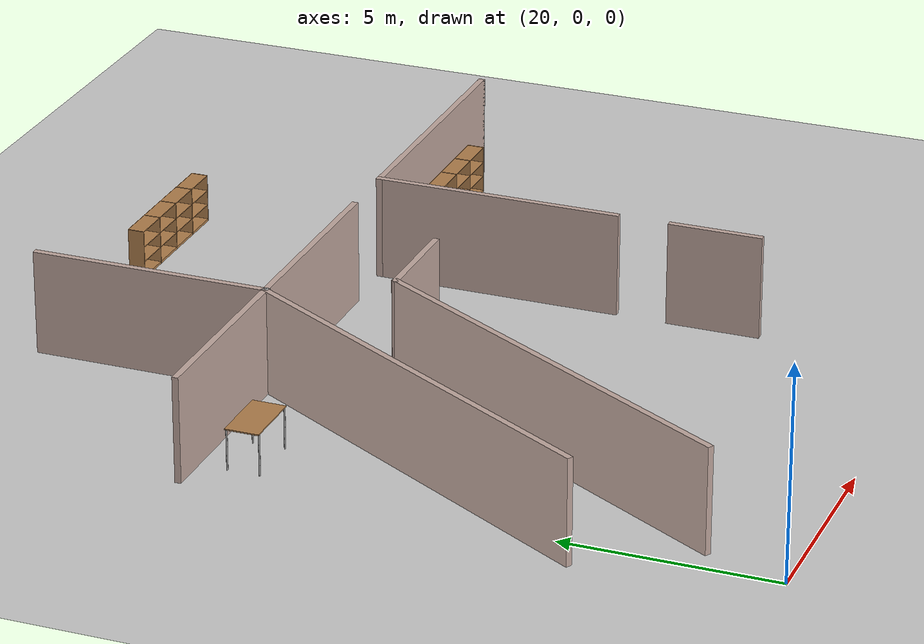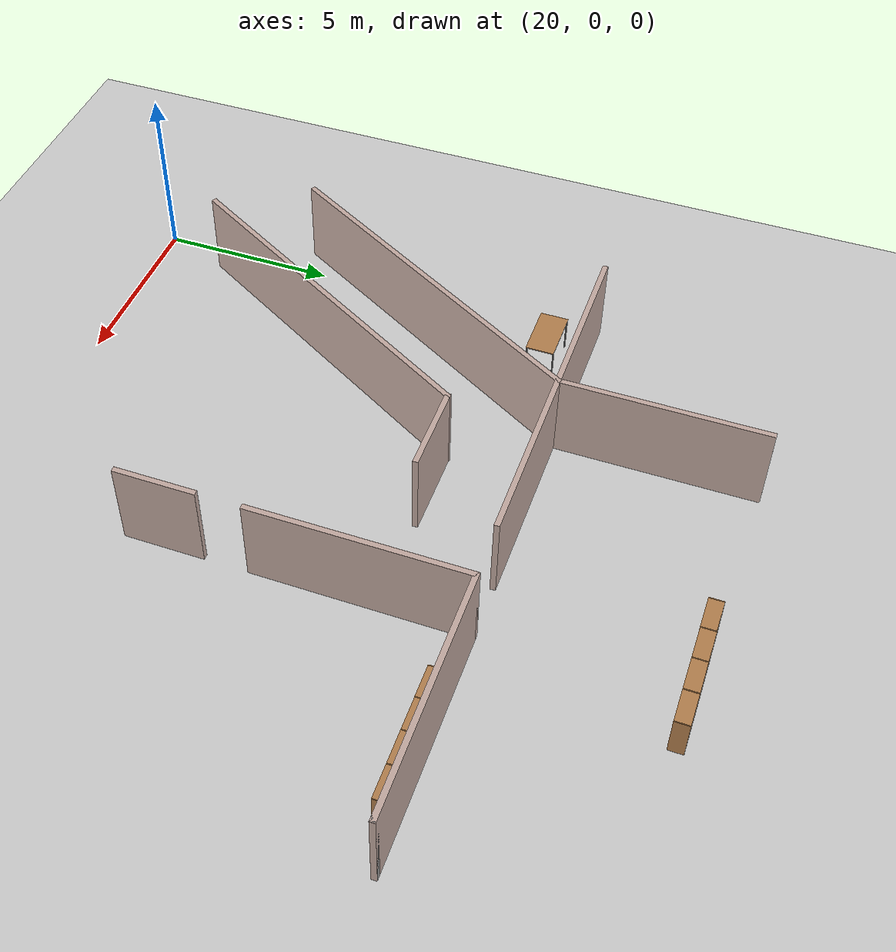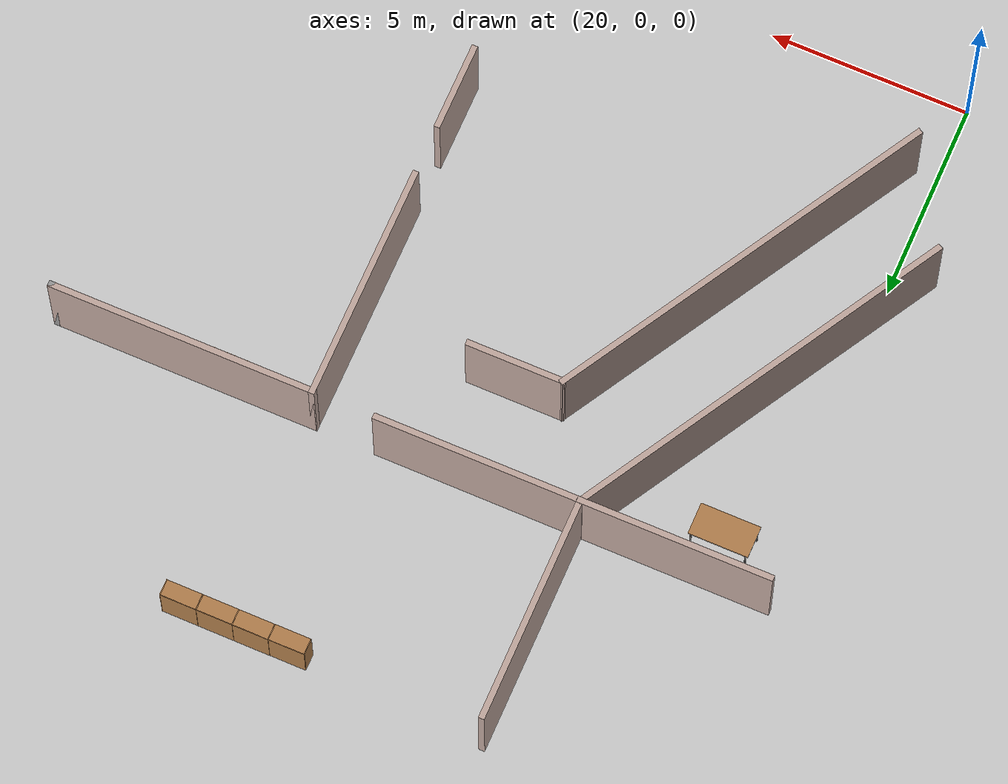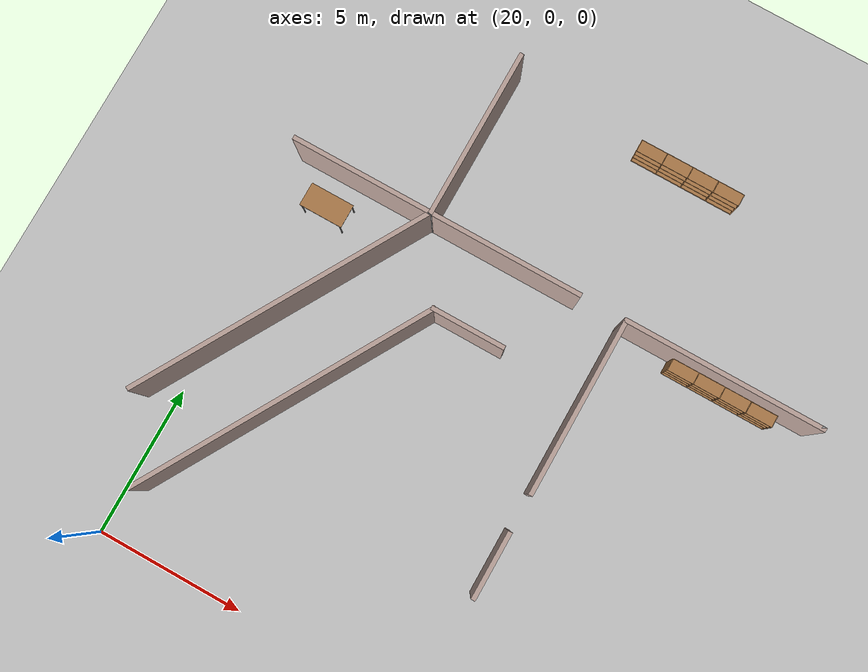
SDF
<sdf version="1.6">
 <world name="default">
  <model name="ground_plane">
   <static>1</static>
   <link name="link">
    <collision name="collision">
     <geometry><plane><normal>0 0 1</normal><size>100 100</size></plane></geometry>
     <surface><friction><ode><mu>100</mu><mu2>50</mu2></ode></friction></surface>
    </collision>
    <visual name="visual">
     <cast_shadows>0</cast_shadows>
     <geometry><plane><normal>0 0 1</normal><size>100 100</size></plane></geometry>
     <material>
      <script><uri>file://media/materials/scripts/gazebo.material</uri><name>Gazebo/Grey</name></script>
     </material>
    </visual>
   </link>
  </model>
  <model name="floor">
   <link name="Wall_151">
    <pose>20.4424 10.1846 0 0 -0 1.0472</pose>
    <visual name="Wall_151_Visual">
     <pose>0 0 1.25 0 -0 0</pose>
     <geometry><box><size>10.5 0.15 2.5</size></box></geometry>
     <material>
      <script><uri>file://media/materials/scripts/gazebo.material</uri><name>Gazebo/Grey</name></script>
      <ambient>0.760784 0.662745 0.627451 1</ambient>
     </material>
     <meta><layer>0</layer></meta>
    </visual>
    <collision name="Wall_151_Collision">
     <pose>0 0 1.25 0 -0 0</pose>
     <geometry><box><size>10.5 0.15 2.5</size></box></geometry>
     <surface>
      <friction>
       <ode><mu>1</mu><mu2>1</mu2><fdir1>0 0 0</fdir1><slip1>0</slip1><slip2>0</slip2></ode>
       <torsional>
        <coefficient>1</coefficient>
        <patch_radius>0</patch_radius>
        <surface_radius>0</surface_radius>
        <use_patch_radius>1</use_patch_radius>
        <ode><slip>0</slip></ode>
       </torsional>
      </friction>
      <bounce><restitution_coefficient>0</restitution_coefficient><threshold>1e+06</threshold></bounce>
      <contact>
       <collide_without_contact>0</collide_without_contact>
       <collide_without_contact_bitmask>1</collide_without_contact_bitmask>
       <collide_bitmask>1</collide_bitmask>
       <ode>
        <soft_cfm>0</soft_cfm>
        <soft_erp>0.2</soft_erp>
        <kp>1e+13</kp>
        <kd>1</kd>
        <max_vel>0.01</max_vel>
        <min_depth>0</min_depth>
       </ode>
       <bullet>
        <split_impulse>1</split_impulse>
        <split_impulse_penetration_threshold>-0.01</split_impulse_penetration_threshold>
        <soft_cfm>0</soft_cfm>
        <soft_erp>0.2</soft_erp>
        <kp>1e+13</kp>
        <kd>1</kd>
       </bullet>
      </contact>
     </surface>
    </collision>
   </link>
   <link name="Wall_152">
    <pose>25.5799 14.6662 0 0 -0 0</pose>
    <visual name="Wall_152_Visual">
     <pose>0 0 1.25 0 -0 0</pose>
     <geometry><box><size>5.25 0.15 2.5</size></box></geometry>
     <material>
      <script><uri>file://media/materials/scripts/gazebo.material</uri><name>Gazebo/Grey</name></script>
      <ambient>0.760784 0.662745 0.627451 1</ambient>
     </material>
     <meta><layer>0</layer></meta>
    </visual>
    <collision name="Wall_152_Collision">
     <pose>0 0 1.25 0 -0 0</pose>
     <geometry><box><size>5.25 0.15 2.5</size></box></geometry>
     <surface>
      <friction>
       <ode><mu>1</mu><mu2>1</mu2><fdir1>0 0 0</fdir1><slip1>0</slip1><slip2>0</slip2></ode>
       <torsional>
        <coefficient>1</coefficient>
        <patch_radius>0</patch_radius>
        <surface_radius>0</surface_radius>
        <use_patch_radius>1</use_patch_radius>
        <ode><slip>0</slip></ode>
       </torsional>
      </friction>
      <bounce><restitution_coefficient>0</restitution_coefficient><threshold>1e+06</threshold></bounce>
      <contact>
       <collide_without_contact>0</collide_without_contact>
       <collide_without_contact_bitmask>1</collide_without_contact_bitmask>
       <collide_bitmask>1</collide_bitmask>
       <ode>
        <soft_cfm>0</soft_cfm>
        <soft_erp>0.2</soft_erp>
        <kp>1e+13</kp>
        <kd>1</kd>
        <max_vel>0.01</max_vel>
        <min_depth>0</min_depth>
       </ode>
       <bullet>
        <split_impulse>1</split_impulse>
        <split_impulse_penetration_threshold>-0.01</split_impulse_penetration_threshold>
        <soft_cfm>0</soft_cfm>
        <soft_erp>0.2</soft_erp>
        <kp>1e+13</kp>
        <kd>1</kd>
       </bullet>
      </contact>
     </surface>
    </collision>
   </link>
   <link name="Wall_154">
    <pose>33.0299 14.6662 0 0 -0 0</pose>
    <visual name="Wall_154_Visual">
     <pose>0 0 1.25 0 -0 0</pose>
     <geometry><box><size>6.75 0.15 2.5</size></box></geometry>
     <material>
      <script><uri>file://media/materials/scripts/gazebo.material</uri><name>Gazebo/Grey</name></script>
      <ambient>0.760784 0.662745 0.627451 1</ambient>
     </material>
     <meta><layer>0</layer></meta>
    </visual>
    <collision name="Wall_154_Collision">
     <pose>0 0 1.25 0 -0 0</pose>
     <geometry><box><size>6.75 0.15 2.5</size></box></geometry>
     <surface>
      <friction>
       <ode><mu>1</mu><mu2>1</mu2><fdir1>0 0 0</fdir1><slip1>0</slip1><slip2>0</slip2></ode>
       <torsional>
        <coefficient>1</coefficient>
        <patch_radius>0</patch_radius>
        <surface_radius>0</surface_radius>
        <use_patch_radius>1</use_patch_radius>
        <ode><slip>0</slip></ode>
       </torsional>
      </friction>
      <bounce><restitution_coefficient>0</restitution_coefficient><threshold>1e+06</threshold></bounce>
      <contact>
       <collide_without_contact>0</collide_without_contact>
       <collide_without_contact_bitmask>1</collide_without_contact_bitmask>
       <collide_bitmask>1</collide_bitmask>
       <ode>
        <soft_cfm>0</soft_cfm>
        <soft_erp>0.2</soft_erp>
        <kp>1e+13</kp>
        <kd>1</kd>
        <max_vel>0.01</max_vel>
        <min_depth>0</min_depth>
       </ode>
       <bullet>
        <split_impulse>1</split_impulse>
        <split_impulse_penetration_threshold>-0.01</split_impulse_penetration_threshold>
        <soft_cfm>0</soft_cfm>
        <soft_erp>0.2</soft_erp>
        <kp>1e+13</kp>
        <kd>1</kd>
       </bullet>
      </contact>
     </surface>
    </collision>
   </link>
   <link name="Wall_155">
    <pose>36.3299 14.6662 0 0 -0 0</pose>
    <visual name="Wall_155_Visual">
     <pose>0 0 1.25 0 -0 0</pose>
     <geometry><box><size>0.15 0.15 2.5</size></box></geometry>
     <material>
      <script><uri>file://media/materials/scripts/gazebo.material</uri><name>Gazebo/Grey</name></script>
      <ambient>1 1 1 1</ambient>
     </material>
     <meta><layer>0</layer></meta>
    </visual>
    <collision name="Wall_155_Collision">
     <pose>0 0 1.25 0 -0 0</pose>
     <geometry><box><size>0.15 0.15 2.5</size></box></geometry>
     <surface>
      <friction>
       <ode><mu>1</mu><mu2>1</mu2><fdir1>0 0 0</fdir1><slip1>0</slip1><slip2>0</slip2></ode>
       <torsional>
        <coefficient>1</coefficient>
        <patch_radius>0</patch_radius>
        <surface_radius>0</surface_radius>
        <use_patch_radius>1</use_patch_radius>
        <ode><slip>0</slip></ode>
       </torsional>
      </friction>
      <bounce><restitution_coefficient>0</restitution_coefficient><threshold>1e+06</threshold></bounce>
      <contact>
       <collide_without_contact>0</collide_without_contact>
       <collide_without_contact_bitmask>1</collide_without_contact_bitmask>
       <collide_bitmask>1</collide_bitmask>
       <ode>
        <soft_cfm>0</soft_cfm>
        <soft_erp>0.2</soft_erp>
        <kp>1e+13</kp>
        <kd>1</kd>
        <max_vel>0.01</max_vel>
        <min_depth>0</min_depth>
       </ode>
       <bullet>
        <split_impulse>1</split_impulse>
        <split_impulse_penetration_threshold>-0.01</split_impulse_penetration_threshold>
        <soft_cfm>0</soft_cfm>
        <soft_erp>0.2</soft_erp>
        <kp>1e+13</kp>
        <kd>1</kd>
       </bullet>
      </contact>
     </surface>
    </collision>
   </link>
   <link name="Wall_158">
    <pose>23.0349 14.6662 0 0 -0 0</pose>
    <visual name="Wall_158_Visual">
     <pose>0 0 1.25 0 -0 0</pose>
     <geometry><box><size>0.16 0.15 2.5</size></box></geometry>
     <material>
      <script><uri>file://media/materials/scripts/gazebo.material</uri><name>Gazebo/Grey</name></script>
      <ambient>1 1 1 1</ambient>
     </material>
     <meta><layer>0</layer></meta>
    </visual>
    <collision name="Wall_158_Collision">
     <pose>0 0 1.25 0 -0 0</pose>
     <geometry><box><size>0.16 0.15 2.5</size></box></geometry>
     <surface>
      <friction>
       <ode><mu>1</mu><mu2>1</mu2><fdir1>0 0 0</fdir1><slip1>0</slip1><slip2>0</slip2></ode>
       <torsional>
        <coefficient>1</coefficient>
        <patch_radius>0</patch_radius>
        <surface_radius>0</surface_radius>
        <use_patch_radius>1</use_patch_radius>
        <ode><slip>0</slip></ode>
       </torsional>
      </friction>
      <bounce><restitution_coefficient>0</restitution_coefficient><threshold>1e+06</threshold></bounce>
      <contact>
       <collide_without_contact>0</collide_without_contact>
       <collide_without_contact_bitmask>1</collide_without_contact_bitmask>
       <collide_bitmask>1</collide_bitmask>
       <ode>
        <soft_cfm>0</soft_cfm>
        <soft_erp>0.2</soft_erp>
        <kp>1e+13</kp>
        <kd>1</kd>
        <max_vel>0.01</max_vel>
        <min_depth>0</min_depth>
       </ode>
       <bullet>
        <split_impulse>1</split_impulse>
        <split_impulse_penetration_threshold>-0.01</split_impulse_penetration_threshold>
        <soft_cfm>0</soft_cfm>
        <soft_erp>0.2</soft_erp>
        <kp>1e+13</kp>
        <kd>1</kd>
       </bullet>
      </contact>
     </surface>
    </collision>
   </link>
   <link name="Wall_159">
    <pose>23.0399 17.4662 0 0 -0 1.5708</pose>
    <visual name="Wall_159_Visual">
     <pose>0 0 1.25 0 -0 0</pose>
     <geometry><box><size>5.75 0.15 2.5</size></box></geometry>
     <material>
      <script><uri>file://media/materials/scripts/gazebo.material</uri><name>Gazebo/Grey</name></script>
      <ambient>0.760784 0.662745 0.627451 1</ambient>
     </material>
     <meta><layer>0</layer></meta>
    </visual>
    <collision name="Wall_159_Collision">
     <pose>0 0 1.25 0 -0 0</pose>
     <geometry><box><size>5.75 0.15 2.5</size></box></geometry>
     <surface>
      <friction>
       <ode><mu>1</mu><mu2>1</mu2><fdir1>0 0 0</fdir1><slip1>0</slip1><slip2>0</slip2></ode>
       <torsional>
        <coefficient>1</coefficient>
        <patch_radius>0</patch_radius>
        <surface_radius>0</surface_radius>
        <use_patch_radius>1</use_patch_radius>
        <ode><slip>0</slip></ode>
       </torsional>
      </friction>
      <bounce><restitution_coefficient>0</restitution_coefficient><threshold>1e+06</threshold></bounce>
      <contact>
       <collide_without_contact>0</collide_without_contact>
       <collide_without_contact_bitmask>1</collide_without_contact_bitmask>
       <collide_bitmask>1</collide_bitmask>
       <ode>
        <soft_cfm>0</soft_cfm>
        <soft_erp>0.2</soft_erp>
        <kp>1e+13</kp>
        <kd>1</kd>
        <max_vel>0.01</max_vel>
        <min_depth>0</min_depth>
       </ode>
       <bullet>
        <split_impulse>1</split_impulse>
        <split_impulse_penetration_threshold>-0.01</split_impulse_penetration_threshold>
        <soft_cfm>0</soft_cfm>
        <soft_erp>0.2</soft_erp>
        <kp>1e+13</kp>
        <kd>1</kd>
       </bullet>
      </contact>
     </surface>
    </collision>
   </link>
   <link name="Wall_163">
    <pose>20.6881 14.6634 0 0 -0 0.001223</pose>
    <visual name="Wall_163_Visual">
     <pose>0 0 1.25 0 -0 0</pose>
     <geometry><box><size>4.85363 0.15 2.5</size></box></geometry>
     <material>
      <script><uri>file://media/materials/scripts/gazebo.material</uri><name>Gazebo/Grey</name></script>
      <ambient>0.760784 0.662745 0.627451 1</ambient>
     </material>
     <meta><layer>0</layer></meta>
    </visual>
    <collision name="Wall_163_Collision">
     <pose>0 0 1.25 0 -0 0</pose>
     <geometry><box><size>4.85363 0.15 2.5</size></box></geometry>
     <surface>
      <friction>
       <ode><mu>1</mu><mu2>1</mu2><fdir1>0 0 0</fdir1><slip1>0</slip1><slip2>0</slip2></ode>
       <torsional>
        <coefficient>1</coefficient>
        <patch_radius>0</patch_radius>
        <surface_radius>0</surface_radius>
        <use_patch_radius>1</use_patch_radius>
        <ode><slip>0</slip></ode>
       </torsional>
      </friction>
      <bounce><restitution_coefficient>0</restitution_coefficient><threshold>1e+06</threshold></bounce>
      <contact>
       <collide_without_contact>0</collide_without_contact>
       <collide_without_contact_bitmask>1</collide_without_contact_bitmask>
       <collide_bitmask>1</collide_bitmask>
       <ode>
        <soft_cfm>0</soft_cfm>
        <soft_erp>0.2</soft_erp>
        <kp>1e+13</kp>
        <kd>1</kd>
        <max_vel>0.01</max_vel>
        <min_depth>0</min_depth>
       </ode>
       <bullet>
        <split_impulse>1</split_impulse>
        <split_impulse_penetration_threshold>-0.01</split_impulse_penetration_threshold>
        <soft_cfm>0</soft_cfm>
        <soft_erp>0.2</soft_erp>
        <kp>1e+13</kp>
        <kd>1</kd>
       </bullet>
      </contact>
     </surface>
    </collision>
   </link>
   <link name="Wall_164">
    <pose>23.0399 14.6662 0 0 -0 0</pose>
    <visual name="Wall_164_Visual">
     <pose>0 0 1.25 0 -0 0</pose>
     <geometry><box><size>0.15 0.15 2.5</size></box></geometry>
     <material>
      <script><uri>file://media/materials/scripts/gazebo.material</uri><name>Gazebo/Grey</name></script>
      <ambient>1 1 1 1</ambient>
     </material>
     <meta><layer>0</layer></meta>
    </visual>
    <collision name="Wall_164_Collision">
     <pose>0 0 1.25 0 -0 0</pose>
     <geometry><box><size>0.15 0.15 2.5</size></box></geometry>
     <surface>
      <friction>
       <ode><mu>1</mu><mu2>1</mu2><fdir1>0 0 0</fdir1><slip1>0</slip1><slip2>0</slip2></ode>
       <torsional>
        <coefficient>1</coefficient>
        <patch_radius>0</patch_radius>
        <surface_radius>0</surface_radius>
        <use_patch_radius>1</use_patch_radius>
        <ode><slip>0</slip></ode>
       </torsional>
      </friction>
      <bounce><restitution_coefficient>0</restitution_coefficient><threshold>1e+06</threshold></bounce>
      <contact>
       <collide_without_contact>0</collide_without_contact>
       <collide_without_contact_bitmask>1</collide_without_contact_bitmask>
       <collide_bitmask>1</collide_bitmask>
       <ode>
        <soft_cfm>0</soft_cfm>
        <soft_erp>0.2</soft_erp>
        <kp>1e+13</kp>
        <kd>1</kd>
        <max_vel>0.01</max_vel>
        <min_depth>0</min_depth>
       </ode>
       <bullet>
        <split_impulse>1</split_impulse>
        <split_impulse_penetration_threshold>-0.01</split_impulse_penetration_threshold>
        <soft_cfm>0</soft_cfm>
        <soft_erp>0.2</soft_erp>
        <kp>1e+13</kp>
        <kd>1</kd>
       </bullet>
      </contact>
     </surface>
    </collision>
   </link>
   <link name="Wall_166">
    <pose>29.7299 11.7412 0 0 0 -1.5708</pose>
    <visual name="Wall_166_Visual">
     <pose>0 0 1.25 0 -0 0</pose>
     <geometry><box><size>6 0.15 2.5</size></box></geometry>
     <material>
      <script><uri>file://media/materials/scripts/gazebo.material</uri><name>Gazebo/Grey</name></script>
      <ambient>0.760784 0.662745 0.627451 1</ambient>
     </material>
     <meta><layer>0</layer></meta>
    </visual>
    <collision name="Wall_166_Collision">
     <pose>0 0 1.25 0 -0 0</pose>
     <geometry><box><size>6 0.15 2.5</size></box></geometry>
     <surface>
      <friction>
       <ode><mu>1</mu><mu2>1</mu2><fdir1>0 0 0</fdir1><slip1>0</slip1><slip2>0</slip2></ode>
       <torsional>
        <coefficient>1</coefficient>
        <patch_radius>0</patch_radius>
        <surface_radius>0</surface_radius>
        <use_patch_radius>1</use_patch_radius>
        <ode><slip>0</slip></ode>
       </torsional>
      </friction>
      <bounce><restitution_coefficient>0</restitution_coefficient><threshold>1e+06</threshold></bounce>
      <contact>
       <collide_without_contact>0</collide_without_contact>
       <collide_without_contact_bitmask>1</collide_without_contact_bitmask>
       <collide_bitmask>1</collide_bitmask>
       <ode>
        <soft_cfm>0</soft_cfm>
        <soft_erp>0.2</soft_erp>
        <kp>1e+13</kp>
        <kd>1</kd>
        <max_vel>0.01</max_vel>
        <min_depth>0</min_depth>
       </ode>
       <bullet>
        <split_impulse>1</split_impulse>
        <split_impulse_penetration_threshold>-0.01</split_impulse_penetration_threshold>
        <soft_cfm>0</soft_cfm>
        <soft_erp>0.2</soft_erp>
        <kp>1e+13</kp>
        <kd>1</kd>
       </bullet>
      </contact>
     </surface>
    </collision>
   </link>
   <link name="Wall_168">
    <pose>29.7299 6.41624 0 0 0 -1.5708</pose>
    <visual name="Wall_168_Visual">
     <pose>0 0 1.25 0 -0 0</pose>
     <geometry><box><size>2.25 0.15 2.5</size></box></geometry>
     <material>
      <script><uri>file://media/materials/scripts/gazebo.material</uri><name>Gazebo/Grey</name></script>
      <ambient>0.760784 0.662745 0.627451 1</ambient>
     </material>
     <meta><layer>0</layer></meta>
    </visual>
    <collision name="Wall_168_Collision">
     <pose>0 0 1.25 0 -0 0</pose>
     <geometry><box><size>2.25 0.15 2.5</size></box></geometry>
     <surface>
      <friction>
       <ode><mu>1</mu><mu2>1</mu2><fdir1>0 0 0</fdir1><slip1>0</slip1><slip2>0</slip2></ode>
       <torsional>
        <coefficient>1</coefficient>
        <patch_radius>0</patch_radius>
        <surface_radius>0</surface_radius>
        <use_patch_radius>1</use_patch_radius>
        <ode><slip>0</slip></ode>
       </torsional>
      </friction>
      <bounce><restitution_coefficient>0</restitution_coefficient><threshold>1e+06</threshold></bounce>
      <contact>
       <collide_without_contact>0</collide_without_contact>
       <collide_without_contact_bitmask>1</collide_without_contact_bitmask>
       <collide_bitmask>1</collide_bitmask>
       <ode>
        <soft_cfm>0</soft_cfm>
        <soft_erp>0.2</soft_erp>
        <kp>1e+13</kp>
        <kd>1</kd>
        <max_vel>0.01</max_vel>
        <min_depth>0</min_depth>
       </ode>
       <bullet>
        <split_impulse>1</split_impulse>
        <split_impulse_penetration_threshold>-0.01</split_impulse_penetration_threshold>
        <soft_cfm>0</soft_cfm>
        <soft_erp>0.2</soft_erp>
        <kp>1e+13</kp>
        <kd>1</kd>
       </bullet>
      </contact>
     </surface>
    </collision>
   </link>
   <link name="Wall_187">
    <pose>21.9567 7.68453 0 0 -0 1.0472</pose>
    <visual name="Wall_187_Visual">
     <pose>0 0 1.25 0 -0 0</pose>
     <geometry><box><size>10.5 0.15 2.5</size></box></geometry>
     <material>
      <script><uri>file://media/materials/scripts/gazebo.material</uri><name>Gazebo/Grey</name></script>
      <ambient>0.760784 0.662745 0.627451 1</ambient>
     </material>
     <meta><layer>0</layer></meta>
    </visual>
    <collision name="Wall_187_Collision">
     <pose>0 0 1.25 0 -0 0</pose>
     <geometry><box><size>10.5 0.15 2.5</size></box></geometry>
     <surface>
      <friction>
       <ode><mu>1</mu><mu2>1</mu2><fdir1>0 0 0</fdir1><slip1>0</slip1><slip2>0</slip2></ode>
       <torsional>
        <coefficient>1</coefficient>
        <patch_radius>0</patch_radius>
        <surface_radius>0</surface_radius>
        <use_patch_radius>1</use_patch_radius>
        <ode><slip>0</slip></ode>
       </torsional>
      </friction>
      <bounce><restitution_coefficient>0</restitution_coefficient><threshold>1e+06</threshold></bounce>
      <contact>
       <collide_without_contact>0</collide_without_contact>
       <collide_without_contact_bitmask>1</collide_without_contact_bitmask>
       <collide_bitmask>1</collide_bitmask>
       <ode>
        <soft_cfm>0</soft_cfm>
        <soft_erp>0.2</soft_erp>
        <kp>1e+13</kp>
        <kd>1</kd>
        <max_vel>0.01</max_vel>
        <min_depth>0</min_depth>
       </ode>
       <bullet>
        <split_impulse>1</split_impulse>
        <split_impulse_penetration_threshold>-0.01</split_impulse_penetration_threshold>
        <soft_cfm>0</soft_cfm>
        <soft_erp>0.2</soft_erp>
        <kp>1e+13</kp>
        <kd>1</kd>
       </bullet>
      </contact>
     </surface>
    </collision>
   </link>
   <link name="Wall_188">
    <pose>25.7192 12.1662 0 0 -0 0</pose>
    <visual name="Wall_188_Visual">
     <pose>0 0 1.25 0 -0 0</pose>
     <geometry><box><size>2.5 0.15 2.5</size></box></geometry>
     <material>
      <script><uri>file://media/materials/scripts/gazebo.material</uri><name>Gazebo/Grey</name></script>
      <ambient>0.760784 0.662745 0.627451 1</ambient>
     </material>
     <meta><layer>0</layer></meta>
    </visual>
    <collision name="Wall_188_Collision">
     <pose>0 0 1.25 0 -0 0</pose>
     <geometry><box><size>2.5 0.15 2.5</size></box></geometry>
     <surface>
      <friction>
       <ode><mu>1</mu><mu2>1</mu2><fdir1>0 0 0</fdir1><slip1>0</slip1><slip2>0</slip2></ode>
       <torsional>
        <coefficient>1</coefficient>
        <patch_radius>0</patch_radius>
        <surface_radius>0</surface_radius>
        <use_patch_radius>1</use_patch_radius>
        <ode><slip>0</slip></ode>
       </torsional>
      </friction>
      <bounce><restitution_coefficient>0</restitution_coefficient><threshold>1e+06</threshold></bounce>
      <contact>
       <collide_without_contact>0</collide_without_contact>
       <collide_without_contact_bitmask>1</collide_without_contact_bitmask>
       <collide_bitmask>1</collide_bitmask>
       <ode>
        <soft_cfm>0</soft_cfm>
        <soft_erp>0.2</soft_erp>
        <kp>1e+13</kp>
        <kd>1</kd>
        <max_vel>0.01</max_vel>
        <min_depth>0</min_depth>
       </ode>
       <bullet>
        <split_impulse>1</split_impulse>
        <split_impulse_penetration_threshold>-0.01</split_impulse_penetration_threshold>
        <soft_cfm>0</soft_cfm>
        <soft_erp>0.2</soft_erp>
        <kp>1e+13</kp>
        <kd>1</kd>
       </bullet>
      </contact>
     </surface>
    </collision>
   </link>
   <static>1</static>
   <pose>1.26361 -1.27025 0 0 -0 0</pose>
  </model>
  <model name="Bookshelf-4_clone_16">
   <model name="bookshelf">
    <static>1</static>
    <link name="link">
     <inertial><mass>1</mass></inertial>
     <collision name="back">
      <pose>0 0.005 0.6 0 -0 0</pose>
      <geometry><box><size>0.9 0.01 1.2</size></box></geometry>
     </collision>
     <visual name="visual1">
      <pose>0 0.005 0.6 0 -0 0</pose>
      <geometry><box><size>0.9 0.01 1.2</size></box></geometry>
      <material>
       <script><uri>file://media/materials/scripts/gazebo.material</uri><name>Gazebo/Wood</name></script>
      </material>
     </visual>
     <collision name="left_side">
      <pose>0.45 -0.195 0.6 0 -0 0</pose>
      <geometry><box><size>0.02 0.4 1.2</size></box></geometry>
     </collision>
     <visual name="visual2">
      <pose>0.45 -0.195 0.6 0 -0 0</pose>
      <geometry><box><size>0.02 0.4 1.2</size></box></geometry>
      <material>
       <script><uri>file://media/materials/scripts/gazebo.material</uri><name>Gazebo/Wood</name></script>
      </material>
     </visual>
     <collision name="right_side">
      <pose>-0.45 -0.195 0.6 0 -0 0</pose>
      <geometry><box><size>0.02 0.4 1.2</size></box></geometry>
     </collision>
     <visual name="visual3">
      <pose>-0.45 -0.195 0.6 0 -0 0</pose>
      <geometry><box><size>0.02 0.4 1.2</size></box></geometry>
      <material>
       <script><uri>file://media/materials/scripts/gazebo.material</uri><name>Gazebo/Wood</name></script>
      </material>
     </visual>
     <collision name="bottom">
      <pose>0 -0.195 0.03 0 -0 0</pose>
      <geometry><box><size>0.88 0.4 0.06</size></box></geometry>
     </collision>
     <visual name="visual4">
      <pose>0 -0.195 0.03 0 -0 0</pose>
      <geometry><box><size>0.88 0.4 0.06</size></box></geometry>
      <material>
       <script><uri>file://media/materials/scripts/gazebo.material</uri><name>Gazebo/Wood</name></script>
      </material>
     </visual>
     <collision name="top">
      <pose>0 -0.195 1.19 0 -0 0</pose>
      <geometry><box><size>0.88 0.4 0.02</size></box></geometry>
     </collision>
     <visual name="visual5">
      <pose>0 -0.195 1.19 0 -0 0</pose>
      <geometry><box><size>0.88 0.4 0.02</size></box></geometry>
      <material>
       <script><uri>file://media/materials/scripts/gazebo.material</uri><name>Gazebo/Wood</name></script>
      </material>
     </visual>
     <collision name="low_shelf">
      <pose>0 -0.195 0.43 0 -0 0</pose>
      <geometry><box><size>0.88 0.4 0.02</size></box></geometry>
     </collision>
     <visual name="visual6">
      <pose>0 -0.195 0.43 0 -0 0</pose>
      <geometry><box><size>0.88 0.4 0.02</size></box></geometry>
      <material>
       <script><uri>file://media/materials/scripts/gazebo.material</uri><name>Gazebo/Wood</name></script>
      </material>
     </visual>
     <collision name="high_shelf">
      <pose>0 -0.195 0.8 0 -0 0</pose>
      <geometry><box><size>0.88 0.4 0.02</size></box></geometry>
     </collision>
     <visual name="visual7">
      <pose>0 -0.195 0.8 0 -0 0</pose>
      <geometry><box><size>0.88 0.4 0.02</size></box></geometry>
      <material>
       <script><uri>file://media/materials/scripts/gazebo.material</uri><name>Gazebo/Wood</name></script>
      </material>
     </visual>
    </link>
    <pose>-1.35671 -0.002097 0 0 -0 0</pose>
   </model>
   <model name="bookshelf_0">
    <static>1</static>
    <link name="link">
     <inertial><mass>1</mass></inertial>
     <collision name="back">
      <pose>0 0.005 0.6 0 -0 0</pose>
      <geometry><box><size>0.9 0.01 1.2</size></box></geometry>
     </collision>
     <visual name="visual1">
      <pose>0 0.005 0.6 0 -0 0</pose>
      <geometry><box><size>0.9 0.01 1.2</size></box></geometry>
      <material>
       <script><uri>file://media/materials/scripts/gazebo.material</uri><name>Gazebo/Wood</name></script>
      </material>
     </visual>
     <collision name="left_side">
      <pose>0.45 -0.195 0.6 0 -0 0</pose>
      <geometry><box><size>0.02 0.4 1.2</size></box></geometry>
     </collision>
     <visual name="visual2">
      <pose>0.45 -0.195 0.6 0 -0 0</pose>
      <geometry><box><size>0.02 0.4 1.2</size></box></geometry>
      <material>
       <script><uri>file://media/materials/scripts/gazebo.material</uri><name>Gazebo/Wood</name></script>
      </material>
     </visual>
     <collision name="right_side">
      <pose>-0.45 -0.195 0.6 0 -0 0</pose>
      <geometry><box><size>0.02 0.4 1.2</size></box></geometry>
     </collision>
     <visual name="visual3">
      <pose>-0.45 -0.195 0.6 0 -0 0</pose>
      <geometry><box><size>0.02 0.4 1.2</size></box></geometry>
      <material>
       <script><uri>file://media/materials/scripts/gazebo.material</uri><name>Gazebo/Wood</name></script>
      </material>
     </visual>
     <collision name="bottom">
      <pose>0 -0.195 0.03 0 -0 0</pose>
      <geometry><box><size>0.88 0.4 0.06</size></box></geometry>
     </collision>
     <visual name="visual4">
      <pose>0 -0.195 0.03 0 -0 0</pose>
      <geometry><box><size>0.88 0.4 0.06</size></box></geometry>
      <material>
       <script><uri>file://media/materials/scripts/gazebo.material</uri><name>Gazebo/Wood</name></script>
      </material>
     </visual>
     <collision name="top">
      <pose>0 -0.195 1.19 0 -0 0</pose>
      <geometry><box><size>0.88 0.4 0.02</size></box></geometry>
     </collision>
     <visual name="visual5">
      <pose>0 -0.195 1.19 0 -0 0</pose>
      <geometry><box><size>0.88 0.4 0.02</size></box></geometry>
      <material>
       <script><uri>file://media/materials/scripts/gazebo.material</uri><name>Gazebo/Wood</name></script>
      </material>
     </visual>
     <collision name="low_shelf">
      <pose>0 -0.195 0.43 0 -0 0</pose>
      <geometry><box><size>0.88 0.4 0.02</size></box></geometry>
     </collision>
     <visual name="visual6">
      <pose>0 -0.195 0.43 0 -0 0</pose>
      <geometry><box><size>0.88 0.4 0.02</size></box></geometry>
      <material>
       <script><uri>file://media/materials/scripts/gazebo.material</uri><name>Gazebo/Wood</name></script>
      </material>
     </visual>
     <collision name="high_shelf">
      <pose>0 -0.195 0.8 0 -0 0</pose>
      <geometry><box><size>0.88 0.4 0.02</size></box></geometry>
     </collision>
     <visual name="visual7">
      <pose>0 -0.195 0.8 0 -0 0</pose>
      <geometry><box><size>0.88 0.4 0.02</size></box></geometry>
      <material>
       <script><uri>file://media/materials/scripts/gazebo.material</uri><name>Gazebo/Wood</name></script>
      </material>
     </visual>
    </link>
    <pose>-0.452974 0.001386 0 0 -0 0</pose>
   </model>
   <model name="bookshelf_1">
    <static>1</static>
    <link name="link">
     <inertial><mass>1</mass></inertial>
     <collision name="back">
      <pose>0 0.005 0.6 0 -0 0</pose>
      <geometry><box><size>0.9 0.01 1.2</size></box></geometry>
     </collision>
     <visual name="visual1">
      <pose>0 0.005 0.6 0 -0 0</pose>
      <geometry><box><size>0.9 0.01 1.2</size></box></geometry>
      <material>
       <script><uri>file://media/materials/scripts/gazebo.material</uri><name>Gazebo/Wood</name></script>
      </material>
     </visual>
     <collision name="left_side">
      <pose>0.45 -0.195 0.6 0 -0 0</pose>
      <geometry><box><size>0.02 0.4 1.2</size></box></geometry>
     </collision>
     <visual name="visual2">
      <pose>0.45 -0.195 0.6 0 -0 0</pose>
      <geometry><box><size>0.02 0.4 1.2</size></box></geometry>
      <material>
       <script><uri>file://media/materials/scripts/gazebo.material</uri><name>Gazebo/Wood</name></script>
      </material>
     </visual>
     <collision name="right_side">
      <pose>-0.45 -0.195 0.6 0 -0 0</pose>
      <geometry><box><size>0.02 0.4 1.2</size></box></geometry>
     </collision>
     <visual name="visual3">
      <pose>-0.45 -0.195 0.6 0 -0 0</pose>
      <geometry><box><size>0.02 0.4 1.2</size></box></geometry>
      <material>
       <script><uri>file://media/materials/scripts/gazebo.material</uri><name>Gazebo/Wood</name></script>
      </material>
     </visual>
     <collision name="bottom">
      <pose>0 -0.195 0.03 0 -0 0</pose>
      <geometry><box><size>0.88 0.4 0.06</size></box></geometry>
     </collision>
     <visual name="visual4">
      <pose>0 -0.195 0.03 0 -0 0</pose>
      <geometry><box><size>0.88 0.4 0.06</size></box></geometry>
      <material>
       <script><uri>file://media/materials/scripts/gazebo.material</uri><name>Gazebo/Wood</name></script>
      </material>
     </visual>
     <collision name="top">
      <pose>0 -0.195 1.19 0 -0 0</pose>
      <geometry><box><size>0.88 0.4 0.02</size></box></geometry>
     </collision>
     <visual name="visual5">
      <pose>0 -0.195 1.19 0 -0 0</pose>
      <geometry><box><size>0.88 0.4 0.02</size></box></geometry>
      <material>
       <script><uri>file://media/materials/scripts/gazebo.material</uri><name>Gazebo/Wood</name></script>
      </material>
     </visual>
     <collision name="low_shelf">
      <pose>0 -0.195 0.43 0 -0 0</pose>
      <geometry><box><size>0.88 0.4 0.02</size></box></geometry>
     </collision>
     <visual name="visual6">
      <pose>0 -0.195 0.43 0 -0 0</pose>
      <geometry><box><size>0.88 0.4 0.02</size></box></geometry>
      <material>
       <script><uri>file://media/materials/scripts/gazebo.material</uri><name>Gazebo/Wood</name></script>
      </material>
     </visual>
     <collision name="high_shelf">
      <pose>0 -0.195 0.8 0 -0 0</pose>
      <geometry><box><size>0.88 0.4 0.02</size></box></geometry>
     </collision>
     <visual name="visual7">
      <pose>0 -0.195 0.8 0 -0 0</pose>
      <geometry><box><size>0.88 0.4 0.02</size></box></geometry>
      <material>
       <script><uri>file://media/materials/scripts/gazebo.material</uri><name>Gazebo/Wood</name></script>
      </material>
     </visual>
    </link>
    <pose>0.450456 0.000733 0 0 -0 0</pose>
   </model>
   <model name="bookshelf_2">
    <static>1</static>
    <link name="link">
     <inertial><mass>1</mass></inertial>
     <collision name="back">
      <pose>0 0.005 0.6 0 -0 0</pose>
      <geometry><box><size>0.9 0.01 1.2</size></box></geometry>
     </collision>
     <visual name="visual1">
      <pose>0 0.005 0.6 0 -0 0</pose>
      <geometry><box><size>0.9 0.01 1.2</size></box></geometry>
      <material>
       <script><uri>file://media/materials/scripts/gazebo.material</uri><name>Gazebo/Wood</name></script>
      </material>
     </visual>
     <collision name="left_side">
      <pose>0.45 -0.195 0.6 0 -0 0</pose>
      <geometry><box><size>0.02 0.4 1.2</size></box></geometry>
     </collision>
     <visual name="visual2">
      <pose>0.45 -0.195 0.6 0 -0 0</pose>
      <geometry><box><size>0.02 0.4 1.2</size></box></geometry>
      <material>
       <script><uri>file://media/materials/scripts/gazebo.material</uri><name>Gazebo/Wood</name></script>
      </material>
     </visual>
     <collision name="right_side">
      <pose>-0.45 -0.195 0.6 0 -0 0</pose>
      <geometry><box><size>0.02 0.4 1.2</size></box></geometry>
     </collision>
     <visual name="visual3">
      <pose>-0.45 -0.195 0.6 0 -0 0</pose>
      <geometry><box><size>0.02 0.4 1.2</size></box></geometry>
      <material>
       <script><uri>file://media/materials/scripts/gazebo.material</uri><name>Gazebo/Wood</name></script>
      </material>
     </visual>
     <collision name="bottom">
      <pose>0 -0.195 0.03 0 -0 0</pose>
      <geometry><box><size>0.88 0.4 0.06</size></box></geometry>
     </collision>
     <visual name="visual4">
      <pose>0 -0.195 0.03 0 -0 0</pose>
      <geometry><box><size>0.88 0.4 0.06</size></box></geometry>
      <material>
       <script><uri>file://media/materials/scripts/gazebo.material</uri><name>Gazebo/Wood</name></script>
      </material>
     </visual>
     <collision name="top">
      <pose>0 -0.195 1.19 0 -0 0</pose>
      <geometry><box><size>0.88 0.4 0.02</size></box></geometry>
     </collision>
     <visual name="visual5">
      <pose>0 -0.195 1.19 0 -0 0</pose>
      <geometry><box><size>0.88 0.4 0.02</size></box></geometry>
      <material>
       <script><uri>file://media/materials/scripts/gazebo.material</uri><name>Gazebo/Wood</name></script>
      </material>
     </visual>
     <collision name="low_shelf">
      <pose>0 -0.195 0.43 0 -0 0</pose>
      <geometry><box><size>0.88 0.4 0.02</size></box></geometry>
     </collision>
     <visual name="visual6">
      <pose>0 -0.195 0.43 0 -0 0</pose>
      <geometry><box><size>0.88 0.4 0.02</size></box></geometry>
      <material>
       <script><uri>file://media/materials/scripts/gazebo.material</uri><name>Gazebo/Wood</name></script>
      </material>
     </visual>
     <collision name="high_shelf">
      <pose>0 -0.195 0.8 0 -0 0</pose>
      <geometry><box><size>0.88 0.4 0.02</size></box></geometry>
     </collision>
     <visual name="visual7">
      <pose>0 -0.195 0.8 0 -0 0</pose>
      <geometry><box><size>0.88 0.4 0.02</size></box></geometry>
      <material>
       <script><uri>file://media/materials/scripts/gazebo.material</uri><name>Gazebo/Wood</name></script>
      </material>
     </visual>
    </link>
    <pose>1.35922 -1.7e-05 0 0 -0 0</pose>
   </model>
   <static>0</static>
   <pose>30.5948 18.9055 0 0 -0 0</pose>
  </model>
  <model name="Bookshelf-4_clone_17">
   <model name="bookshelf">
    <static>1</static>
    <link name="link">
     <inertial><mass>1</mass></inertial>
     <collision name="back">
      <pose>0 0.005 0.6 0 -0 0</pose>
      <geometry><box><size>0.9 0.01 1.2</size></box></geometry>
     </collision>
     <visual name="visual1">
      <pose>0 0.005 0.6 0 -0 0</pose>
      <geometry><box><size>0.9 0.01 1.2</size></box></geometry>
      <material>
       <script><uri>file://media/materials/scripts/gazebo.material</uri><name>Gazebo/Wood</name></script>
      </material>
     </visual>
     <collision name="left_side">
      <pose>0.45 -0.195 0.6 0 -0 0</pose>
      <geometry><box><size>0.02 0.4 1.2</size></box></geometry>
     </collision>
     <visual name="visual2">
      <pose>0.45 -0.195 0.6 0 -0 0</pose>
      <geometry><box><size>0.02 0.4 1.2</size></box></geometry>
      <material>
       <script><uri>file://media/materials/scripts/gazebo.material</uri><name>Gazebo/Wood</name></script>
      </material>
     </visual>
     <collision name="right_side">
      <pose>-0.45 -0.195 0.6 0 -0 0</pose>
      <geometry><box><size>0.02 0.4 1.2</size></box></geometry>
     </collision>
     <visual name="visual3">
      <pose>-0.45 -0.195 0.6 0 -0 0</pose>
      <geometry><box><size>0.02 0.4 1.2</size></box></geometry>
      <material>
       <script><uri>file://media/materials/scripts/gazebo.material</uri><name>Gazebo/Wood</name></script>
      </material>
     </visual>
     <collision name="bottom">
      <pose>0 -0.195 0.03 0 -0 0</pose>
      <geometry><box><size>0.88 0.4 0.06</size></box></geometry>
     </collision>
     <visual name="visual4">
      <pose>0 -0.195 0.03 0 -0 0</pose>
      <geometry><box><size>0.88 0.4 0.06</size></box></geometry>
      <material>
       <script><uri>file://media/materials/scripts/gazebo.material</uri><name>Gazebo/Wood</name></script>
      </material>
     </visual>
     <collision name="top">
      <pose>0 -0.195 1.19 0 -0 0</pose>
      <geometry><box><size>0.88 0.4 0.02</size></box></geometry>
     </collision>
     <visual name="visual5">
      <pose>0 -0.195 1.19 0 -0 0</pose>
      <geometry><box><size>0.88 0.4 0.02</size></box></geometry>
      <material>
       <script><uri>file://media/materials/scripts/gazebo.material</uri><name>Gazebo/Wood</name></script>
      </material>
     </visual>
     <collision name="low_shelf">
      <pose>0 -0.195 0.43 0 -0 0</pose>
      <geometry><box><size>0.88 0.4 0.02</size></box></geometry>
     </collision>
     <visual name="visual6">
      <pose>0 -0.195 0.43 0 -0 0</pose>
      <geometry><box><size>0.88 0.4 0.02</size></box></geometry>
      <material>
       <script><uri>file://media/materials/scripts/gazebo.material</uri><name>Gazebo/Wood</name></script>
      </material>
     </visual>
     <collision name="high_shelf">
      <pose>0 -0.195 0.8 0 -0 0</pose>
      <geometry><box><size>0.88 0.4 0.02</size></box></geometry>
     </collision>
     <visual name="visual7">
      <pose>0 -0.195 0.8 0 -0 0</pose>
      <geometry><box><size>0.88 0.4 0.02</size></box></geometry>
      <material>
       <script><uri>file://media/materials/scripts/gazebo.material</uri><name>Gazebo/Wood</name></script>
      </material>
     </visual>
    </link>
    <pose>-1.35671 -0.002097 0 0 -0 0</pose>
   </model>
   <model name="bookshelf_0">
    <static>1</static>
    <link name="link">
     <inertial><mass>1</mass></inertial>
     <collision name="back">
      <pose>0 0.005 0.6 0 -0 0</pose>
      <geometry><box><size>0.9 0.01 1.2</size></box></geometry>
     </collision>
     <visual name="visual1">
      <pose>0 0.005 0.6 0 -0 0</pose>
      <geometry><box><size>0.9 0.01 1.2</size></box></geometry>
      <material>
       <script><uri>file://media/materials/scripts/gazebo.material</uri><name>Gazebo/Wood</name></script>
      </material>
     </visual>
     <collision name="left_side">
      <pose>0.45 -0.195 0.6 0 -0 0</pose>
      <geometry><box><size>0.02 0.4 1.2</size></box></geometry>
     </collision>
     <visual name="visual2">
      <pose>0.45 -0.195 0.6 0 -0 0</pose>
      <geometry><box><size>0.02 0.4 1.2</size></box></geometry>
      <material>
       <script><uri>file://media/materials/scripts/gazebo.material</uri><name>Gazebo/Wood</name></script>
      </material>
     </visual>
     <collision name="right_side">
      <pose>-0.45 -0.195 0.6 0 -0 0</pose>
      <geometry><box><size>0.02 0.4 1.2</size></box></geometry>
     </collision>
     <visual name="visual3">
      <pose>-0.45 -0.195 0.6 0 -0 0</pose>
      <geometry><box><size>0.02 0.4 1.2</size></box></geometry>
      <material>
       <script><uri>file://media/materials/scripts/gazebo.material</uri><name>Gazebo/Wood</name></script>
      </material>
     </visual>
     <collision name="bottom">
      <pose>0 -0.195 0.03 0 -0 0</pose>
      <geometry><box><size>0.88 0.4 0.06</size></box></geometry>
     </collision>
     <visual name="visual4">
      <pose>0 -0.195 0.03 0 -0 0</pose>
      <geometry><box><size>0.88 0.4 0.06</size></box></geometry>
      <material>
       <script><uri>file://media/materials/scripts/gazebo.material</uri><name>Gazebo/Wood</name></script>
      </material>
     </visual>
     <collision name="top">
      <pose>0 -0.195 1.19 0 -0 0</pose>
      <geometry><box><size>0.88 0.4 0.02</size></box></geometry>
     </collision>
     <visual name="visual5">
      <pose>0 -0.195 1.19 0 -0 0</pose>
      <geometry><box><size>0.88 0.4 0.02</size></box></geometry>
      <material>
       <script><uri>file://media/materials/scripts/gazebo.material</uri><name>Gazebo/Wood</name></script>
      </material>
     </visual>
     <collision name="low_shelf">
      <pose>0 -0.195 0.43 0 -0 0</pose>
      <geometry><box><size>0.88 0.4 0.02</size></box></geometry>
     </collision>
     <visual name="visual6">
      <pose>0 -0.195 0.43 0 -0 0</pose>
      <geometry><box><size>0.88 0.4 0.02</size></box></geometry>
      <material>
       <script><uri>file://media/materials/scripts/gazebo.material</uri><name>Gazebo/Wood</name></script>
      </material>
     </visual>
     <collision name="high_shelf">
      <pose>0 -0.195 0.8 0 -0 0</pose>
      <geometry><box><size>0.88 0.4 0.02</size></box></geometry>
     </collision>
     <visual name="visual7">
      <pose>0 -0.195 0.8 0 -0 0</pose>
      <geometry><box><size>0.88 0.4 0.02</size></box></geometry>
      <material>
       <script><uri>file://media/materials/scripts/gazebo.material</uri><name>Gazebo/Wood</name></script>
      </material>
     </visual>
    </link>
    <pose>-0.452974 0.001386 0 0 -0 0</pose>
   </model>
   <model name="bookshelf_1">
    <static>1</static>
    <link name="link">
     <inertial><mass>1</mass></inertial>
     <collision name="back">
      <pose>0 0.005 0.6 0 -0 0</pose>
      <geometry><box><size>0.9 0.01 1.2</size></box></geometry>
     </collision>
     <visual name="visual1">
      <pose>0 0.005 0.6 0 -0 0</pose>
      <geometry><box><size>0.9 0.01 1.2</size></box></geometry>
      <material>
       <script><uri>file://media/materials/scripts/gazebo.material</uri><name>Gazebo/Wood</name></script>
      </material>
     </visual>
     <collision name="left_side">
      <pose>0.45 -0.195 0.6 0 -0 0</pose>
      <geometry><box><size>0.02 0.4 1.2</size></box></geometry>
     </collision>
     <visual name="visual2">
      <pose>0.45 -0.195 0.6 0 -0 0</pose>
      <geometry><box><size>0.02 0.4 1.2</size></box></geometry>
      <material>
       <script><uri>file://media/materials/scripts/gazebo.material</uri><name>Gazebo/Wood</name></script>
      </material>
     </visual>
     <collision name="right_side">
      <pose>-0.45 -0.195 0.6 0 -0 0</pose>
      <geometry><box><size>0.02 0.4 1.2</size></box></geometry>
     </collision>
     <visual name="visual3">
      <pose>-0.45 -0.195 0.6 0 -0 0</pose>
      <geometry><box><size>0.02 0.4 1.2</size></box></geometry>
      <material>
       <script><uri>file://media/materials/scripts/gazebo.material</uri><name>Gazebo/Wood</name></script>
      </material>
     </visual>
     <collision name="bottom">
      <pose>0 -0.195 0.03 0 -0 0</pose>
      <geometry><box><size>0.88 0.4 0.06</size></box></geometry>
     </collision>
     <visual name="visual4">
      <pose>0 -0.195 0.03 0 -0 0</pose>
      <geometry><box><size>0.88 0.4 0.06</size></box></geometry>
      <material>
       <script><uri>file://media/materials/scripts/gazebo.material</uri><name>Gazebo/Wood</name></script>
      </material>
     </visual>
     <collision name="top">
      <pose>0 -0.195 1.19 0 -0 0</pose>
      <geometry><box><size>0.88 0.4 0.02</size></box></geometry>
     </collision>
     <visual name="visual5">
      <pose>0 -0.195 1.19 0 -0 0</pose>
      <geometry><box><size>0.88 0.4 0.02</size></box></geometry>
      <material>
       <script><uri>file://media/materials/scripts/gazebo.material</uri><name>Gazebo/Wood</name></script>
      </material>
     </visual>
     <collision name="low_shelf">
      <pose>0 -0.195 0.43 0 -0 0</pose>
      <geometry><box><size>0.88 0.4 0.02</size></box></geometry>
     </collision>
     <visual name="visual6">
      <pose>0 -0.195 0.43 0 -0 0</pose>
      <geometry><box><size>0.88 0.4 0.02</size></box></geometry>
      <material>
       <script><uri>file://media/materials/scripts/gazebo.material</uri><name>Gazebo/Wood</name></script>
      </material>
     </visual>
     <collision name="high_shelf">
      <pose>0 -0.195 0.8 0 -0 0</pose>
      <geometry><box><size>0.88 0.4 0.02</size></box></geometry>
     </collision>
     <visual name="visual7">
      <pose>0 -0.195 0.8 0 -0 0</pose>
      <geometry><box><size>0.88 0.4 0.02</size></box></geometry>
      <material>
       <script><uri>file://media/materials/scripts/gazebo.material</uri><name>Gazebo/Wood</name></script>
      </material>
     </visual>
    </link>
    <pose>0.450456 0.000733 0 0 -0 0</pose>
   </model>
   <model name="bookshelf_2">
    <static>1</static>
    <link name="link">
     <inertial><mass>1</mass></inertial>
     <collision name="back">
      <pose>0 0.005 0.6 0 -0 0</pose>
      <geometry><box><size>0.9 0.01 1.2</size></box></geometry>
     </collision>
     <visual name="visual1">
      <pose>0 0.005 0.6 0 -0 0</pose>
      <geometry><box><size>0.9 0.01 1.2</size></box></geometry>
      <material>
       <script><uri>file://media/materials/scripts/gazebo.material</uri><name>Gazebo/Wood</name></script>
      </material>
     </visual>
     <collision name="left_side">
      <pose>0.45 -0.195 0.6 0 -0 0</pose>
      <geometry><box><size>0.02 0.4 1.2</size></box></geometry>
     </collision>
     <visual name="visual2">
      <pose>0.45 -0.195 0.6 0 -0 0</pose>
      <geometry><box><size>0.02 0.4 1.2</size></box></geometry>
      <material>
       <script><uri>file://media/materials/scripts/gazebo.material</uri><name>Gazebo/Wood</name></script>
      </material>
     </visual>
     <collision name="right_side">
      <pose>-0.45 -0.195 0.6 0 -0 0</pose>
      <geometry><box><size>0.02 0.4 1.2</size></box></geometry>
     </collision>
     <visual name="visual3">
      <pose>-0.45 -0.195 0.6 0 -0 0</pose>
      <geometry><box><size>0.02 0.4 1.2</size></box></geometry>
      <material>
       <script><uri>file://media/materials/scripts/gazebo.material</uri><name>Gazebo/Wood</name></script>
      </material>
     </visual>
     <collision name="bottom">
      <pose>0 -0.195 0.03 0 -0 0</pose>
      <geometry><box><size>0.88 0.4 0.06</size></box></geometry>
     </collision>
     <visual name="visual4">
      <pose>0 -0.195 0.03 0 -0 0</pose>
      <geometry><box><size>0.88 0.4 0.06</size></box></geometry>
      <material>
       <script><uri>file://media/materials/scripts/gazebo.material</uri><name>Gazebo/Wood</name></script>
      </material>
     </visual>
     <collision name="top">
      <pose>0 -0.195 1.19 0 -0 0</pose>
      <geometry><box><size>0.88 0.4 0.02</size></box></geometry>
     </collision>
     <visual name="visual5">
      <pose>0 -0.195 1.19 0 -0 0</pose>
      <geometry><box><size>0.88 0.4 0.02</size></box></geometry>
      <material>
       <script><uri>file://media/materials/scripts/gazebo.material</uri><name>Gazebo/Wood</name></script>
      </material>
     </visual>
     <collision name="low_shelf">
      <pose>0 -0.195 0.43 0 -0 0</pose>
      <geometry><box><size>0.88 0.4 0.02</size></box></geometry>
     </collision>
     <visual name="visual6">
      <pose>0 -0.195 0.43 0 -0 0</pose>
      <geometry><box><size>0.88 0.4 0.02</size></box></geometry>
      <material>
       <script><uri>file://media/materials/scripts/gazebo.material</uri><name>Gazebo/Wood</name></script>
      </material>
     </visual>
     <collision name="high_shelf">
      <pose>0 -0.195 0.8 0 -0 0</pose>
      <geometry><box><size>0.88 0.4 0.02</size></box></geometry>
     </collision>
     <visual name="visual7">
      <pose>0 -0.195 0.8 0 -0 0</pose>
      <geometry><box><size>0.88 0.4 0.02</size></box></geometry>
      <material>
       <script><uri>file://media/materials/scripts/gazebo.material</uri><name>Gazebo/Wood</name></script>
      </material>
     </visual>
    </link>
    <pose>1.35922 -1.7e-05 0 0 -0 0</pose>
   </model>
   <static>0</static>
   <pose>34.6883 13.2982 0 0 -0 0</pose>
  </model>
  <model name="table_clone_0">
   <static>1</static>
   <link name="link">
    <collision name="surface">
     <pose>0 0 1 0 -0 0</pose>
     <geometry><box><size>1.5 0.8 0.03</size></box></geometry>
     <surface><friction><ode><mu>0.6</mu><mu2>0.6</mu2></ode></friction></surface>
    </collision>
    <visual name="visual1">
     <pose>0 0 1 0 -0 0</pose>
     <geometry><box><size>1.5 0.8 0.03</size></box></geometry>
     <material>
      <script><uri>file://media/materials/scripts/gazebo.material</uri><name>Gazebo/Wood</name></script>
     </material>
    </visual>
    <collision name="front_left_leg">
     <pose>0.68 0.38 0.5 0 -0 0</pose>
     <geometry><cylinder><radius>0.02</radius><length>1</length></cylinder></geometry>
    </collision>
    <visual name="front_left_leg">
     <pose>0.68 0.38 0.5 0 -0 0</pose>
     <geometry><cylinder><radius>0.02</radius><length>1</length></cylinder></geometry>
     <material>
      <script><uri>file://media/materials/scripts/gazebo.material</uri><name>Gazebo/Grey</name></script>
     </material>
    </visual>
    <collision name="front_right_leg">
     <pose>0.68 -0.38 0.5 0 -0 0</pose>
     <geometry><cylinder><radius>0.02</radius><length>1</length></cylinder></geometry>
    </collision>
    <visual name="front_right_leg">
     <pose>0.68 -0.38 0.5 0 -0 0</pose>
     <geometry><cylinder><radius>0.02</radius><length>1</length></cylinder></geometry>
     <material>
      <script><uri>file://media/materials/scripts/gazebo.material</uri><name>Gazebo/Grey</name></script>
     </material>
    </visual>
    <collision name="back_right_leg">
     <pose>-0.68 -0.38 0.5 0 -0 0</pose>
     <geometry><cylinder><radius>0.02</radius><length>1</length></cylinder></geometry>
    </collision>
    <visual name="back_right_leg">
     <pose>-0.68 -0.38 0.5 0 -0 0</pose>
     <geometry><cylinder><radius>0.02</radius><length>1</length></cylinder></geometry>
     <material>
      <script><uri>file://media/materials/scripts/gazebo.material</uri><name>Gazebo/Grey</name></script>
     </material>
    </visual>
    <collision name="back_left_leg">
     <pose>-0.68 0.38 0.5 0 -0 0</pose>
     <geometry><cylinder><radius>0.02</radius><length>1</length></cylinder></geometry>
    </collision>
    <visual name="back_left_leg">
     <pose>-0.68 0.38 0.5 0 -0 0</pose>
     <geometry><cylinder><radius>0.02</radius><length>1</length></cylinder></geometry>
     <material>
      <script><uri>file://media/materials/scripts/gazebo.material</uri><name>Gazebo/Grey</name></script>
     </material>
    </visual>
   </link>
   <pose>21.1521 12.28 0 0 -0 0</pose>
  </model>
 </world>
</sdf>
